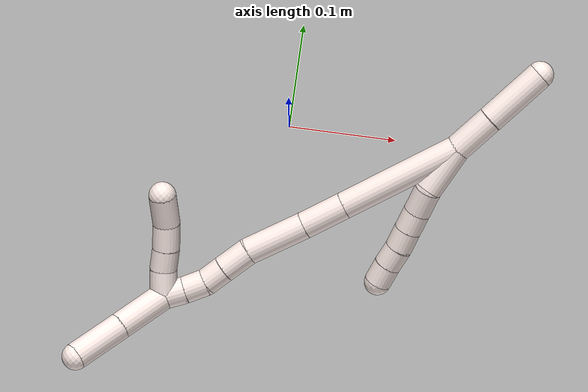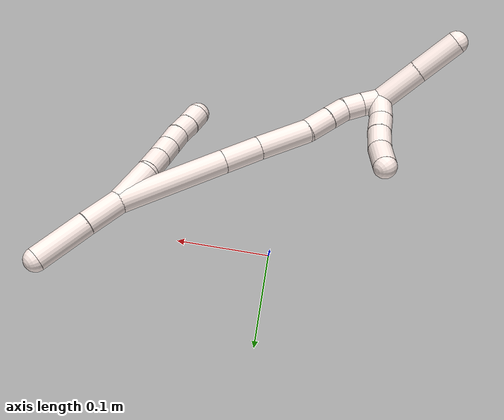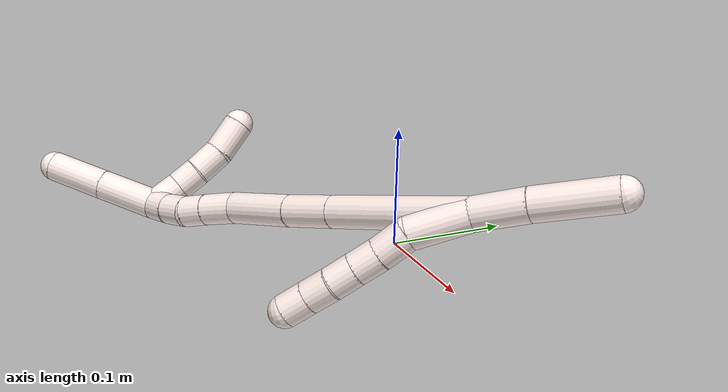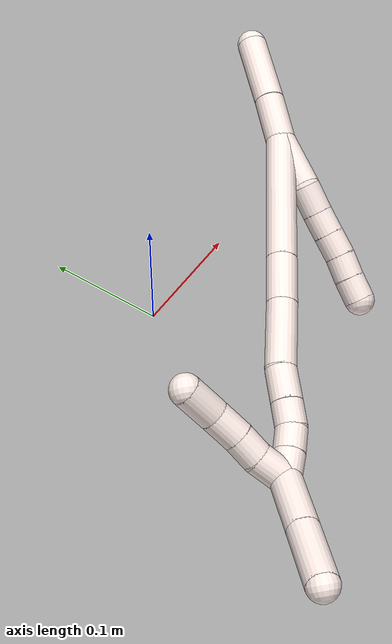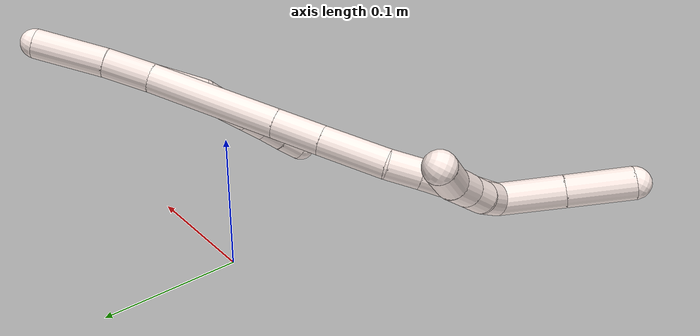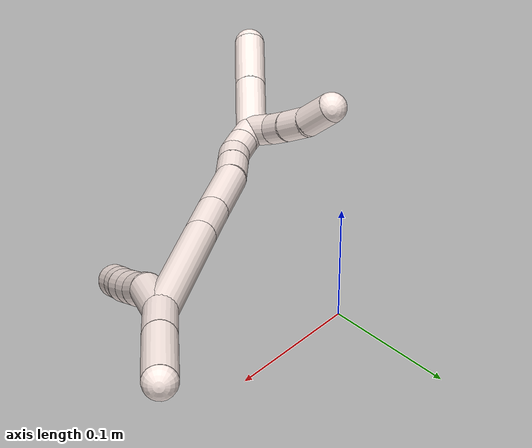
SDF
<sdf version="1.7">
 <world name="default">
  <model name="11">
   <static>0</static>
   <link name="11">
    <collision name="collision-cylinder-e_1_2_8">
     <pose>-0.005938 0.001319 0.021848 -0.060308 -0.264923 0.008038</pose>
     <geometry><cylinder><radius>0.0125</radius><length>0.045357</length></cylinder></geometry>
     <surface>
      <friction><ode><mu>1.16</mu><mu2>1.16</mu2><slip1>0</slip1><slip2>0</slip2></ode></friction>
      <contact><ode><kp>1e+06</kp><kd>1</kd><max_vel>0</max_vel><min_depth>0.001</min_depth></ode></contact>
     </surface>
    </collision>
    <visual name="visual-cylinder-e_1_2_8">
     <pose>-0.005938 0.001319 0.021848 -0.060308 -0.264923 0.008038</pose>
     <geometry><cylinder><radius>0.0125</radius><length>0.045357</length></cylinder></geometry>
     <material><ambient>1 0.933333 0.909804 1</ambient></material>
    </visual>
    <collision name="collision-cylinder-e_2_8_9">
     <pose>-0.013642 0.007045 0.055006 -0.371455 -0.144422 0.027181</pose>
     <geometry><cylinder><radius>0.0125</radius><length>0.024534</length></cylinder></geometry>
     <surface>
      <friction><ode><mu>1.16</mu><mu2>1.16</mu2><slip1>0</slip1><slip2>0</slip2></ode></friction>
      <contact><ode><kp>1e+06</kp><kd>1</kd><max_vel>0</max_vel><min_depth>0.001</min_depth></ode></contact>
     </surface>
    </collision>
    <visual name="visual-cylinder-e_2_8_9">
     <pose>-0.013642 0.007045 0.055006 -0.371455 -0.144422 0.027181</pose>
     <geometry><cylinder><radius>0.0125</radius><length>0.024534</length></cylinder></geometry>
     <material><ambient>1 0.933333 0.909804 1</ambient></material>
    </visual>
    <collision name="collision-cylinder-e_3_9_10">
     <pose>-0.017409 0.014523 0.075672 -0.317352 -0.200598 0.032205</pose>
     <geometry><cylinder><radius>0.0125</radius><length>0.020095</length></cylinder></geometry>
     <surface>
      <friction><ode><mu>1.16</mu><mu2>1.16</mu2><slip1>0</slip1><slip2>0</slip2></ode></friction>
      <contact><ode><kp>1e+06</kp><kd>1</kd><max_vel>0</max_vel><min_depth>0.001</min_depth></ode></contact>
     </surface>
    </collision>
    <visual name="visual-cylinder-e_3_9_10">
     <pose>-0.017409 0.014523 0.075672 -0.317352 -0.200598 0.032205</pose>
     <geometry><cylinder><radius>0.0125</radius><length>0.020095</length></cylinder></geometry>
     <material><ambient>1 0.933333 0.909804 1</ambient></material>
    </visual>
    <collision name="collision-cylinder-e_4_10_11">
     <pose>-0.021464 0.020684 0.09432 -0.32077 -0.206675 0.033551</pose>
     <geometry><cylinder><radius>0.0125</radius><length>0.020013</length></cylinder></geometry>
     <surface>
      <friction><ode><mu>1.16</mu><mu2>1.16</mu2><slip1>0</slip1><slip2>0</slip2></ode></friction>
      <contact><ode><kp>1e+06</kp><kd>1</kd><max_vel>0</max_vel><min_depth>0.001</min_depth></ode></contact>
     </surface>
    </collision>
    <visual name="visual-cylinder-e_4_10_11">
     <pose>-0.021464 0.020684 0.09432 -0.32077 -0.206675 0.033551</pose>
     <geometry><cylinder><radius>0.0125</radius><length>0.020013</length></cylinder></geometry>
     <material><ambient>1 0.933333 0.909804 1</ambient></material>
    </visual>
    <collision name="collision-cylinder-e_5_11_12">
     <pose>-0.024701 0.026271 0.113225 -0.254465 -0.118588 0.015188</pose>
     <geometry><cylinder><radius>0.0125</radius><length>0.020001</length></cylinder></geometry>
     <surface>
      <friction><ode><mu>1.16</mu><mu2>1.16</mu2><slip1>0</slip1><slip2>0</slip2></ode></friction>
      <contact><ode><kp>1e+06</kp><kd>1</kd><max_vel>0</max_vel><min_depth>0.001</min_depth></ode></contact>
     </surface>
    </collision>
    <visual name="visual-cylinder-e_5_11_12">
     <pose>-0.024701 0.026271 0.113225 -0.254465 -0.118588 0.015188</pose>
     <geometry><cylinder><radius>0.0125</radius><length>0.020001</length></cylinder></geometry>
     <material><ambient>1 0.933333 0.909804 1</ambient></material>
    </visual>
    <collision name="collision-cylinder-e_6_12_6">
     <pose>-0.027593 0.031538 0.132292 -0.284667 -0.171756 0.024672</pose>
     <geometry><cylinder><radius>0.0125</radius><length>0.020001</length></cylinder></geometry>
     <surface>
      <friction><ode><mu>1.16</mu><mu2>1.16</mu2><slip1>0</slip1><slip2>0</slip2></ode></friction>
      <contact><ode><kp>1e+06</kp><kd>1</kd><max_vel>0</max_vel><min_depth>0.001</min_depth></ode></contact>
     </surface>
    </collision>
    <visual name="visual-cylinder-e_6_12_6">
     <pose>-0.027593 0.031538 0.132292 -0.284667 -0.171756 0.024672</pose>
     <geometry><cylinder><radius>0.0125</radius><length>0.020001</length></cylinder></geometry>
     <material><ambient>1 0.933333 0.909804 1</ambient></material>
    </visual>
    <collision name="collision-cylinder-e_1_2_13">
     <pose>0.002109 0.002309 -0.019921 -3.02618 0.104769 -1.47403</pose>
     <geometry><cylinder><radius>0.0125</radius><length>0.04033</length></cylinder></geometry>
     <surface>
      <friction><ode><mu>1.16</mu><mu2>1.16</mu2><slip1>0</slip1><slip2>0</slip2></ode></friction>
      <contact><ode><kp>1e+06</kp><kd>1</kd><max_vel>0</max_vel><min_depth>0.001</min_depth></ode></contact>
     </surface>
    </collision>
    <visual name="visual-cylinder-e_1_2_13">
     <pose>0.002109 0.002309 -0.019921 -3.02618 0.104769 -1.47403</pose>
     <geometry><cylinder><radius>0.0125</radius><length>0.04033</length></cylinder></geometry>
     <material><ambient>1 0.933333 0.909804 1</ambient></material>
    </visual>
    <collision name="collision-cylinder-e_2_13_5">
     <pose>0.00844 0.009216 -0.069017 -2.9853 0.141993 -1.47461</pose>
     <geometry><cylinder><radius>0.0125</radius><length>0.05967</length></cylinder></geometry>
     <surface>
      <friction><ode><mu>1.16</mu><mu2>1.16</mu2><slip1>0</slip1><slip2>0</slip2></ode></friction>
      <contact><ode><kp>1e+06</kp><kd>1</kd><max_vel>0</max_vel><min_depth>0.001</min_depth></ode></contact>
     </surface>
    </collision>
    <visual name="visual-cylinder-e_2_13_5">
     <pose>0.00844 0.009216 -0.069017 -2.9853 0.141993 -1.47461</pose>
     <geometry><cylinder><radius>0.0125</radius><length>0.05967</length></cylinder></geometry>
     <material><ambient>1 0.933333 0.909804 1</ambient></material>
    </visual>
    <collision name="collision-cylinder-e_1_2_14">
     <pose>0.00387 -0.017592 0.05427 0.313468 0.067728 0.010707</pose>
     <geometry><cylinder><radius>0.0125</radius><length>0.114361</length></cylinder></geometry>
     <surface>
      <friction><ode><mu>1.16</mu><mu2>1.16</mu2><slip1>0</slip1><slip2>0</slip2></ode></friction>
      <contact><ode><kp>1e+06</kp><kd>1</kd><max_vel>0</max_vel><min_depth>0.001</min_depth></ode></contact>
     </surface>
    </collision>
    <visual name="visual-cylinder-e_1_2_14">
     <pose>0.00387 -0.017592 0.05427 0.313468 0.067728 0.010707</pose>
     <geometry><cylinder><radius>0.0125</radius><length>0.114361</length></cylinder></geometry>
     <material><ambient>1 0.933333 0.909804 1</ambient></material>
    </visual>
    <collision name="collision-cylinder-e_2_14_15">
     <pose>0.009141 -0.041455 0.127732 0.315815 0.069284 0.011037</pose>
     <geometry><cylinder><radius>0.0125</radius><length>0.04048</length></cylinder></geometry>
     <surface>
      <friction><ode><mu>1.16</mu><mu2>1.16</mu2><slip1>0</slip1><slip2>0</slip2></ode></friction>
      <contact><ode><kp>1e+06</kp><kd>1</kd><max_vel>0</max_vel><min_depth>0.001</min_depth></ode></contact>
     </surface>
    </collision>
    <visual name="visual-cylinder-e_2_14_15">
     <pose>0.009141 -0.041455 0.127732 0.315815 0.069284 0.011037</pose>
     <geometry><cylinder><radius>0.0125</radius><length>0.04048</length></cylinder></geometry>
     <material><ambient>1 0.933333 0.909804 1</ambient></material>
    </visual>
    <collision name="collision-cylinder-e_3_15_16">
     <pose>0.012848 -0.057205 0.17335 0.344408 0.081966 0.014264</pose>
     <geometry><cylinder><radius>0.0125</radius><length>0.056337</length></cylinder></geometry>
     <surface>
      <friction><ode><mu>1.16</mu><mu2>1.16</mu2><slip1>0</slip1><slip2>0</slip2></ode></friction>
      <contact><ode><kp>1e+06</kp><kd>1</kd><max_vel>0</max_vel><min_depth>0.001</min_depth></ode></contact>
     </surface>
    </collision>
    <visual name="visual-cylinder-e_3_15_16">
     <pose>0.012848 -0.057205 0.17335 0.344408 0.081966 0.014264</pose>
     <geometry><cylinder><radius>0.0125</radius><length>0.056337</length></cylinder></geometry>
     <material><ambient>1 0.933333 0.909804 1</ambient></material>
    </visual>
    <collision name="collision-cylinder-e_4_16_17">
     <pose>0.014169 -0.06983 0.213279 0.228878 -0.070996 -0.008164</pose>
     <geometry><cylinder><radius>0.0125</radius><length>0.0278</length></cylinder></geometry>
     <surface>
      <friction><ode><mu>1.16</mu><mu2>1.16</mu2><slip1>0</slip1><slip2>0</slip2></ode></friction>
      <contact><ode><kp>1e+06</kp><kd>1</kd><max_vel>0</max_vel><min_depth>0.001</min_depth></ode></contact>
     </surface>
    </collision>
    <visual name="visual-cylinder-e_4_16_17">
     <pose>0.014169 -0.06983 0.213279 0.228878 -0.070996 -0.008164</pose>
     <geometry><cylinder><radius>0.0125</radius><length>0.0278</length></cylinder></geometry>
     <material><ambient>1 0.933333 0.909804 1</ambient></material>
    </visual>
    <collision name="collision-cylinder-e_5_17_18">
     <pose>0.012599 -0.074984 0.236723 0.199418 -0.057489 -0.005753</pose>
     <geometry><cylinder><radius>0.0125</radius><length>0.020316</length></cylinder></geometry>
     <surface>
      <friction><ode><mu>1.16</mu><mu2>1.16</mu2><slip1>0</slip1><slip2>0</slip2></ode></friction>
      <contact><ode><kp>1e+06</kp><kd>1</kd><max_vel>0</max_vel><min_depth>0.001</min_depth></ode></contact>
     </surface>
    </collision>
    <visual name="visual-cylinder-e_5_17_18">
     <pose>0.012599 -0.074984 0.236723 0.199418 -0.057489 -0.005753</pose>
     <geometry><cylinder><radius>0.0125</radius><length>0.020316</length></cylinder></geometry>
     <material><ambient>1 0.933333 0.909804 1</ambient></material>
    </visual>
    <collision name="collision-cylinder-e_6_18_19">
     <pose>0.013302 -0.081143 0.255926 0.421168 0.126143 0.026997</pose>
     <geometry><cylinder><radius>0.0125</radius><length>0.020463</length></cylinder></geometry>
     <surface>
      <friction><ode><mu>1.16</mu><mu2>1.16</mu2><slip1>0</slip1><slip2>0</slip2></ode></friction>
      <contact><ode><kp>1e+06</kp><kd>1</kd><max_vel>0</max_vel><min_depth>0.001</min_depth></ode></contact>
     </surface>
    </collision>
    <visual name="visual-cylinder-e_6_18_19">
     <pose>0.013302 -0.081143 0.255926 0.421168 0.126143 0.026997</pose>
     <geometry><cylinder><radius>0.0125</radius><length>0.020463</length></cylinder></geometry>
     <material><ambient>1 0.933333 0.909804 1</ambient></material>
    </visual>
    <collision name="collision-cylinder-e_7_19_1">
     <pose>0.016204 -0.090149 0.273921 0.507542 0.160204 0.041634</pose>
     <geometry><cylinder><radius>0.0125</radius><length>0.020243</length></cylinder></geometry>
     <surface>
      <friction><ode><mu>1.16</mu><mu2>1.16</mu2><slip1>0</slip1><slip2>0</slip2></ode></friction>
      <contact><ode><kp>1e+06</kp><kd>1</kd><max_vel>0</max_vel><min_depth>0.001</min_depth></ode></contact>
     </surface>
    </collision>
    <visual name="visual-cylinder-e_7_19_1">
     <pose>0.016204 -0.090149 0.273921 0.507542 0.160204 0.041634</pose>
     <geometry><cylinder><radius>0.0125</radius><length>0.020243</length></cylinder></geometry>
     <material><ambient>1 0.933333 0.909804 1</ambient></material>
    </visual>
    <collision name="collision-cylinder-e_1_1_20">
     <pose>0.024603 -0.101288 0.274028 2.51208 0.566285 1.45862</pose>
     <geometry><cylinder><radius>0.0125</radius><length>0.02529</length></cylinder></geometry>
     <surface>
      <friction><ode><mu>1.16</mu><mu2>1.16</mu2><slip1>0</slip1><slip2>0</slip2></ode></friction>
      <contact><ode><kp>1e+06</kp><kd>1</kd><max_vel>0</max_vel><min_depth>0.001</min_depth></ode></contact>
     </surface>
    </collision>
    <visual name="visual-cylinder-e_1_1_20">
     <pose>0.024603 -0.101288 0.274028 2.51208 0.566285 1.45862</pose>
     <geometry><cylinder><radius>0.0125</radius><length>0.02529</length></cylinder></geometry>
     <material><ambient>1 0.933333 0.909804 1</ambient></material>
    </visual>
    <collision name="collision-cylinder-e_2_20_21">
     <pose>0.035256 -0.112551 0.257237 2.59381 0.38442 1.2116</pose>
     <geometry><cylinder><radius>0.0125</radius><length>0.020635</length></cylinder></geometry>
     <surface>
      <friction><ode><mu>1.16</mu><mu2>1.16</mu2><slip1>0</slip1><slip2>0</slip2></ode></friction>
      <contact><ode><kp>1e+06</kp><kd>1</kd><max_vel>0</max_vel><min_depth>0.001</min_depth></ode></contact>
     </surface>
    </collision>
    <visual name="visual-cylinder-e_2_20_21">
     <pose>0.035256 -0.112551 0.257237 2.59381 0.38442 1.2116</pose>
     <geometry><cylinder><radius>0.0125</radius><length>0.020635</length></cylinder></geometry>
     <material><ambient>1 0.933333 0.909804 1</ambient></material>
    </visual>
    <collision name="collision-cylinder-e_3_21_22">
     <pose>0.044241 -0.124188 0.240279 2.49365 0.434325 1.16265</pose>
     <geometry><cylinder><radius>0.0125</radius><length>0.024313</length></cylinder></geometry>
     <surface>
      <friction><ode><mu>1.16</mu><mu2>1.16</mu2><slip1>0</slip1><slip2>0</slip2></ode></friction>
      <contact><ode><kp>1e+06</kp><kd>1</kd><max_vel>0</max_vel><min_depth>0.001</min_depth></ode></contact>
     </surface>
    </collision>
    <visual name="visual-cylinder-e_3_21_22">
     <pose>0.044241 -0.124188 0.240279 2.49365 0.434325 1.16265</pose>
     <geometry><cylinder><radius>0.0125</radius><length>0.024313</length></cylinder></geometry>
     <material><ambient>1 0.933333 0.909804 1</ambient></material>
    </visual>
    <collision name="collision-cylinder-e_4_22_4">
     <pose>0.053896 -0.141527 0.222174 2.28777 0.310031 0.661807</pose>
     <geometry><cylinder><radius>0.0125</radius><length>0.029762</length></cylinder></geometry>
     <surface>
      <friction><ode><mu>1.16</mu><mu2>1.16</mu2><slip1>0</slip1><slip2>0</slip2></ode></friction>
      <contact><ode><kp>1e+06</kp><kd>1</kd><max_vel>0</max_vel><min_depth>0.001</min_depth></ode></contact>
     </surface>
    </collision>
    <visual name="visual-cylinder-e_4_22_4">
     <pose>0.053896 -0.141527 0.222174 2.28777 0.310031 0.661807</pose>
     <geometry><cylinder><radius>0.0125</radius><length>0.029762</length></cylinder></geometry>
     <material><ambient>1 0.933333 0.909804 1</ambient></material>
    </visual>
    <collision name="collision-cylinder-e_1_1_23">
     <pose>0.009886 -0.108529 0.302272 0.603546 -0.321363 -0.100818</pose>
     <geometry><cylinder><radius>0.0125</radius><length>0.050227</length></cylinder></geometry>
     <surface>
      <friction><ode><mu>1.16</mu><mu2>1.16</mu2><slip1>0</slip1><slip2>0</slip2></ode></friction>
      <contact><ode><kp>1e+06</kp><kd>1</kd><max_vel>0</max_vel><min_depth>0.001</min_depth></ode></contact>
     </surface>
    </collision>
    <visual name="visual-cylinder-e_1_1_23">
     <pose>0.009886 -0.108529 0.302272 0.603546 -0.321363 -0.100818</pose>
     <geometry><cylinder><radius>0.0125</radius><length>0.050227</length></cylinder></geometry>
     <material><ambient>1 0.933333 0.909804 1</ambient></material>
    </visual>
    <collision name="collision-cylinder-e_2_23_3">
     <pose>-0.005857 -0.135581 0.341263 0.609578 -0.319248 -0.101208</pose>
     <geometry><cylinder><radius>0.0125</radius><length>0.049773</length></cylinder></geometry>
     <surface>
      <friction><ode><mu>1.16</mu><mu2>1.16</mu2><slip1>0</slip1><slip2>0</slip2></ode></friction>
      <contact><ode><kp>1e+06</kp><kd>1</kd><max_vel>0</max_vel><min_depth>0.001</min_depth></ode></contact>
     </surface>
    </collision>
    <visual name="visual-cylinder-e_2_23_3">
     <pose>-0.005857 -0.135581 0.341263 0.609578 -0.319248 -0.101208</pose>
     <geometry><cylinder><radius>0.0125</radius><length>0.049773</length></cylinder></geometry>
     <material><ambient>1 0.933333 0.909804 1</ambient></material>
    </visual>
    <collision name="collision-sphere-3">
     <pose>-0.013667 -0.149109 0.360636 0 -0 0</pose>
     <geometry><sphere><radius>0.0125</radius></sphere></geometry>
     <surface>
      <friction><ode><mu>1.16</mu><mu2>1.16</mu2><slip1>0</slip1><slip2>0</slip2></ode></friction>
      <contact><ode><kp>1e+06</kp><kd>1</kd><max_vel>0</max_vel><min_depth>0.001</min_depth></ode></contact>
     </surface>
    </collision>
    <visual name="visual-sphere-3">
     <pose>-0.013667 -0.149109 0.360636 0 -0 0</pose>
     <geometry><sphere><radius>0.0125</radius></sphere></geometry>
     <material><ambient>1 0.933333 0.909804 1</ambient></material>
    </visual>
    <collision name="collision-sphere-23">
     <pose>0.001954 -0.122053 0.32189 0 -0 0</pose>
     <geometry><sphere><radius>0.0125</radius></sphere></geometry>
     <surface>
      <friction><ode><mu>1.16</mu><mu2>1.16</mu2><slip1>0</slip1><slip2>0</slip2></ode></friction>
      <contact><ode><kp>1e+06</kp><kd>1</kd><max_vel>0</max_vel><min_depth>0.001</min_depth></ode></contact>
     </surface>
    </collision>
    <visual name="visual-sphere-23">
     <pose>0.001954 -0.122053 0.32189 0 -0 0</pose>
     <geometry><sphere><radius>0.0125</radius></sphere></geometry>
     <material><ambient>1 0.933333 0.909804 1</ambient></material>
    </visual>
    <collision name="collision-sphere-4">
     <pose>0.058436 -0.152209 0.212862 0 -0 0</pose>
     <geometry><sphere><radius>0.0125</radius></sphere></geometry>
     <surface>
      <friction><ode><mu>1.16</mu><mu2>1.16</mu2><slip1>0</slip1><slip2>0</slip2></ode></friction>
      <contact><ode><kp>1e+06</kp><kd>1</kd><max_vel>0</max_vel><min_depth>0.001</min_depth></ode></contact>
     </surface>
    </collision>
    <visual name="visual-sphere-4">
     <pose>0.058436 -0.152209 0.212862 0 -0 0</pose>
     <geometry><sphere><radius>0.0125</radius></sphere></geometry>
     <material><ambient>1 0.933333 0.909804 1</ambient></material>
    </visual>
    <collision name="collision-sphere-22">
     <pose>0.049356 -0.130844 0.231487 0 -0 0</pose>
     <geometry><sphere><radius>0.0125</radius></sphere></geometry>
     <surface>
      <friction><ode><mu>1.16</mu><mu2>1.16</mu2><slip1>0</slip1><slip2>0</slip2></ode></friction>
      <contact><ode><kp>1e+06</kp><kd>1</kd><max_vel>0</max_vel><min_depth>0.001</min_depth></ode></contact>
     </surface>
    </collision>
    <visual name="visual-sphere-22">
     <pose>0.049356 -0.130844 0.231487 0 -0 0</pose>
     <geometry><sphere><radius>0.0125</radius></sphere></geometry>
     <material><ambient>1 0.933333 0.909804 1</ambient></material>
    </visual>
    <collision name="collision-sphere-21">
     <pose>0.039125 -0.117533 0.249072 0 -0 0</pose>
     <geometry><sphere><radius>0.0125</radius></sphere></geometry>
     <surface>
      <friction><ode><mu>1.16</mu><mu2>1.16</mu2><slip1>0</slip1><slip2>0</slip2></ode></friction>
      <contact><ode><kp>1e+06</kp><kd>1</kd><max_vel>0</max_vel><min_depth>0.001</min_depth></ode></contact>
     </surface>
    </collision>
    <visual name="visual-sphere-21">
     <pose>0.039125 -0.117533 0.249072 0 -0 0</pose>
     <geometry><sphere><radius>0.0125</radius></sphere></geometry>
     <material><ambient>1 0.933333 0.909804 1</ambient></material>
    </visual>
    <collision name="collision-sphere-20">
     <pose>0.031387 -0.10757 0.265402 0 -0 0</pose>
     <geometry><sphere><radius>0.0125</radius></sphere></geometry>
     <surface>
      <friction><ode><mu>1.16</mu><mu2>1.16</mu2><slip1>0</slip1><slip2>0</slip2></ode></friction>
      <contact><ode><kp>1e+06</kp><kd>1</kd><max_vel>0</max_vel><min_depth>0.001</min_depth></ode></contact>
     </surface>
    </collision>
    <visual name="visual-sphere-20">
     <pose>0.031387 -0.10757 0.265402 0 -0 0</pose>
     <geometry><sphere><radius>0.0125</radius></sphere></geometry>
     <material><ambient>1 0.933333 0.909804 1</ambient></material>
    </visual>
    <collision name="collision-sphere-12">
     <pose>-0.025884 0.028771 0.122835 0 -0 0</pose>
     <geometry><sphere><radius>0.0125</radius></sphere></geometry>
     <surface>
      <friction><ode><mu>1.16</mu><mu2>1.16</mu2><slip1>0</slip1><slip2>0</slip2></ode></friction>
      <contact><ode><kp>1e+06</kp><kd>1</kd><max_vel>0</max_vel><min_depth>0.001</min_depth></ode></contact>
     </surface>
    </collision>
    <visual name="visual-sphere-12">
     <pose>-0.025884 0.028771 0.122835 0 -0 0</pose>
     <geometry><sphere><radius>0.0125</radius></sphere></geometry>
     <material><ambient>1 0.933333 0.909804 1</ambient></material>
    </visual>
    <collision name="collision-sphere-11">
     <pose>-0.023518 0.023771 0.103615 0 -0 0</pose>
     <geometry><sphere><radius>0.0125</radius></sphere></geometry>
     <surface>
      <friction><ode><mu>1.16</mu><mu2>1.16</mu2><slip1>0</slip1><slip2>0</slip2></ode></friction>
      <contact><ode><kp>1e+06</kp><kd>1</kd><max_vel>0</max_vel><min_depth>0.001</min_depth></ode></contact>
     </surface>
    </collision>
    <visual name="visual-sphere-11">
     <pose>-0.023518 0.023771 0.103615 0 -0 0</pose>
     <geometry><sphere><radius>0.0125</radius></sphere></geometry>
     <material><ambient>1 0.933333 0.909804 1</ambient></material>
    </visual>
    <collision name="collision-sphere-10">
     <pose>-0.019411 0.017596 0.085026 0 -0 0</pose>
     <geometry><sphere><radius>0.0125</radius></sphere></geometry>
     <surface>
      <friction><ode><mu>1.16</mu><mu2>1.16</mu2><slip1>0</slip1><slip2>0</slip2></ode></friction>
      <contact><ode><kp>1e+06</kp><kd>1</kd><max_vel>0</max_vel><min_depth>0.001</min_depth></ode></contact>
     </surface>
    </collision>
    <visual name="visual-sphere-10">
     <pose>-0.019411 0.017596 0.085026 0 -0 0</pose>
     <geometry><sphere><radius>0.0125</radius></sphere></geometry>
     <material><ambient>1 0.933333 0.909804 1</ambient></material>
    </visual>
    <collision name="collision-sphere-9">
     <pose>-0.015407 0.011451 0.066318 0 -0 0</pose>
     <geometry><sphere><radius>0.0125</radius></sphere></geometry>
     <surface>
      <friction><ode><mu>1.16</mu><mu2>1.16</mu2><slip1>0</slip1><slip2>0</slip2></ode></friction>
      <contact><ode><kp>1e+06</kp><kd>1</kd><max_vel>0</max_vel><min_depth>0.001</min_depth></ode></contact>
     </surface>
    </collision>
    <visual name="visual-sphere-9">
     <pose>-0.015407 0.011451 0.066318 0 -0 0</pose>
     <geometry><sphere><radius>0.0125</radius></sphere></geometry>
     <material><ambient>1 0.933333 0.909804 1</ambient></material>
    </visual>
    <collision name="collision-sphere-2">
     <geometry><sphere><radius>0.0125</radius></sphere></geometry>
     <surface>
      <friction><ode><mu>1.16</mu><mu2>1.16</mu2><slip1>0</slip1><slip2>0</slip2></ode></friction>
      <contact><ode><kp>1e+06</kp><kd>1</kd><max_vel>0</max_vel><min_depth>0.001</min_depth></ode></contact>
     </surface>
    </collision>
    <visual name="visual-sphere-2">
     <geometry><sphere><radius>0.0125</radius></sphere></geometry>
     <material><ambient>1 0.933333 0.909804 1</ambient></material>
    </visual>
    <collision name="collision-sphere-19">
     <pose>0.01459 -0.085292 0.265189 0 -0 0</pose>
     <geometry><sphere><radius>0.0125</radius></sphere></geometry>
     <surface>
      <friction><ode><mu>1.16</mu><mu2>1.16</mu2><slip1>0</slip1><slip2>0</slip2></ode></friction>
      <contact><ode><kp>1e+06</kp><kd>1</kd><max_vel>0</max_vel><min_depth>0.001</min_depth></ode></contact>
     </surface>
    </collision>
    <visual name="visual-sphere-19">
     <pose>0.01459 -0.085292 0.265189 0 -0 0</pose>
     <geometry><sphere><radius>0.0125</radius></sphere></geometry>
     <material><ambient>1 0.933333 0.909804 1</ambient></material>
    </visual>
    <collision name="collision-sphere-8">
     <pose>-0.011876 0.002638 0.043695 0 -0 0</pose>
     <geometry><sphere><radius>0.0125</radius></sphere></geometry>
     <surface>
      <friction><ode><mu>1.16</mu><mu2>1.16</mu2><slip1>0</slip1><slip2>0</slip2></ode></friction>
      <contact><ode><kp>1e+06</kp><kd>1</kd><max_vel>0</max_vel><min_depth>0.001</min_depth></ode></contact>
     </surface>
    </collision>
    <visual name="visual-sphere-8">
     <pose>-0.011876 0.002638 0.043695 0 -0 0</pose>
     <geometry><sphere><radius>0.0125</radius></sphere></geometry>
     <material><ambient>1 0.933333 0.909804 1</ambient></material>
    </visual>
    <collision name="collision-sphere-6">
     <pose>-0.029302 0.034305 0.141748 0 -0 0</pose>
     <geometry><sphere><radius>0.0125</radius></sphere></geometry>
     <surface>
      <friction><ode><mu>1.16</mu><mu2>1.16</mu2><slip1>0</slip1><slip2>0</slip2></ode></friction>
      <contact><ode><kp>1e+06</kp><kd>1</kd><max_vel>0</max_vel><min_depth>0.001</min_depth></ode></contact>
     </surface>
    </collision>
    <visual name="visual-sphere-6">
     <pose>-0.029302 0.034305 0.141748 0 -0 0</pose>
     <geometry><sphere><radius>0.0125</radius></sphere></geometry>
     <material><ambient>1 0.933333 0.909804 1</ambient></material>
    </visual>
    <collision name="collision-sphere-13">
     <pose>0.004218 0.004619 -0.039842 0 -0 0</pose>
     <geometry><sphere><radius>0.0125</radius></sphere></geometry>
     <surface>
      <friction><ode><mu>1.16</mu><mu2>1.16</mu2><slip1>0</slip1><slip2>0</slip2></ode></friction>
      <contact><ode><kp>1e+06</kp><kd>1</kd><max_vel>0</max_vel><min_depth>0.001</min_depth></ode></contact>
     </surface>
    </collision>
    <visual name="visual-sphere-13">
     <pose>0.004218 0.004619 -0.039842 0 -0 0</pose>
     <geometry><sphere><radius>0.0125</radius></sphere></geometry>
     <material><ambient>1 0.933333 0.909804 1</ambient></material>
    </visual>
    <collision name="collision-sphere-5">
     <pose>0.012662 0.013813 -0.098191 0 -0 0</pose>
     <geometry><sphere><radius>0.0125</radius></sphere></geometry>
     <surface>
      <friction><ode><mu>1.16</mu><mu2>1.16</mu2><slip1>0</slip1><slip2>0</slip2></ode></friction>
      <contact><ode><kp>1e+06</kp><kd>1</kd><max_vel>0</max_vel><min_depth>0.001</min_depth></ode></contact>
     </surface>
    </collision>
    <visual name="visual-sphere-5">
     <pose>0.012662 0.013813 -0.098191 0 -0 0</pose>
     <geometry><sphere><radius>0.0125</radius></sphere></geometry>
     <material><ambient>1 0.933333 0.909804 1</ambient></material>
    </visual>
    <collision name="collision-sphere-14">
     <pose>0.00774 -0.035184 0.108539 0 -0 0</pose>
     <geometry><sphere><radius>0.0125</radius></sphere></geometry>
     <surface>
      <friction><ode><mu>1.16</mu><mu2>1.16</mu2><slip1>0</slip1><slip2>0</slip2></ode></friction>
      <contact><ode><kp>1e+06</kp><kd>1</kd><max_vel>0</max_vel><min_depth>0.001</min_depth></ode></contact>
     </surface>
    </collision>
    <visual name="visual-sphere-14">
     <pose>0.00774 -0.035184 0.108539 0 -0 0</pose>
     <geometry><sphere><radius>0.0125</radius></sphere></geometry>
     <material><ambient>1 0.933333 0.909804 1</ambient></material>
    </visual>
    <collision name="collision-sphere-15">
     <pose>0.010542 -0.047726 0.146925 0 -0 0</pose>
     <geometry><sphere><radius>0.0125</radius></sphere></geometry>
     <surface>
      <friction><ode><mu>1.16</mu><mu2>1.16</mu2><slip1>0</slip1><slip2>0</slip2></ode></friction>
      <contact><ode><kp>1e+06</kp><kd>1</kd><max_vel>0</max_vel><min_depth>0.001</min_depth></ode></contact>
     </surface>
    </collision>
    <visual name="visual-sphere-15">
     <pose>0.010542 -0.047726 0.146925 0 -0 0</pose>
     <geometry><sphere><radius>0.0125</radius></sphere></geometry>
     <material><ambient>1 0.933333 0.909804 1</ambient></material>
    </visual>
    <collision name="collision-sphere-16">
     <pose>0.015155 -0.066684 0.199775 0 -0 0</pose>
     <geometry><sphere><radius>0.0125</radius></sphere></geometry>
     <surface>
      <friction><ode><mu>1.16</mu><mu2>1.16</mu2><slip1>0</slip1><slip2>0</slip2></ode></friction>
      <contact><ode><kp>1e+06</kp><kd>1</kd><max_vel>0</max_vel><min_depth>0.001</min_depth></ode></contact>
     </surface>
    </collision>
    <visual name="visual-sphere-16">
     <pose>0.015155 -0.066684 0.199775 0 -0 0</pose>
     <geometry><sphere><radius>0.0125</radius></sphere></geometry>
     <material><ambient>1 0.933333 0.909804 1</ambient></material>
    </visual>
    <collision name="collision-sphere-17">
     <pose>0.013182 -0.072975 0.226783 0 -0 0</pose>
     <geometry><sphere><radius>0.0125</radius></sphere></geometry>
     <surface>
      <friction><ode><mu>1.16</mu><mu2>1.16</mu2><slip1>0</slip1><slip2>0</slip2></ode></friction>
      <contact><ode><kp>1e+06</kp><kd>1</kd><max_vel>0</max_vel><min_depth>0.001</min_depth></ode></contact>
     </surface>
    </collision>
    <visual name="visual-sphere-17">
     <pose>0.013182 -0.072975 0.226783 0 -0 0</pose>
     <geometry><sphere><radius>0.0125</radius></sphere></geometry>
     <material><ambient>1 0.933333 0.909804 1</ambient></material>
    </visual>
    <collision name="collision-sphere-18">
     <pose>0.012015 -0.076993 0.246663 0 -0 0</pose>
     <geometry><sphere><radius>0.0125</radius></sphere></geometry>
     <surface>
      <friction><ode><mu>1.16</mu><mu2>1.16</mu2><slip1>0</slip1><slip2>0</slip2></ode></friction>
      <contact><ode><kp>1e+06</kp><kd>1</kd><max_vel>0</max_vel><min_depth>0.001</min_depth></ode></contact>
     </surface>
    </collision>
    <visual name="visual-sphere-18">
     <pose>0.012015 -0.076993 0.246663 0 -0 0</pose>
     <geometry><sphere><radius>0.0125</radius></sphere></geometry>
     <material><ambient>1 0.933333 0.909804 1</ambient></material>
    </visual>
    <collision name="collision-sphere-1">
     <pose>0.017819 -0.095005 0.282653 0 -0 0</pose>
     <geometry><sphere><radius>0.0125</radius></sphere></geometry>
     <surface>
      <friction><ode><mu>1.16</mu><mu2>1.16</mu2><slip1>0</slip1><slip2>0</slip2></ode></friction>
      <contact><ode><kp>1e+06</kp><kd>1</kd><max_vel>0</max_vel><min_depth>0.001</min_depth></ode></contact>
     </surface>
    </collision>
    <visual name="visual-sphere-1">
     <pose>0.017819 -0.095005 0.282653 0 -0 0</pose>
     <geometry><sphere><radius>0.0125</radius></sphere></geometry>
     <material><ambient>1 0.933333 0.909804 1</ambient></material>
    </visual>
    <inertial>
     <pose>0.006907 -0.047253 0.140348 0 -0 0</pose>
     <mass>0.75</mass>
     <inertia>
      <ixx>0.000188</ixx>
      <ixy>0</ixy>
      <ixz>0</ixz>
      <iyy>0.000155</iyy>
      <iyz>0</iyz>
      <izz>8.2e-05</izz>
     </inertia>
    </inertial>
   </link>
   <pose>0.155861 -0.024479 0.090141 -2.09532 0.449171 2.10353</pose>
  </model>
 </world>
</sdf>
